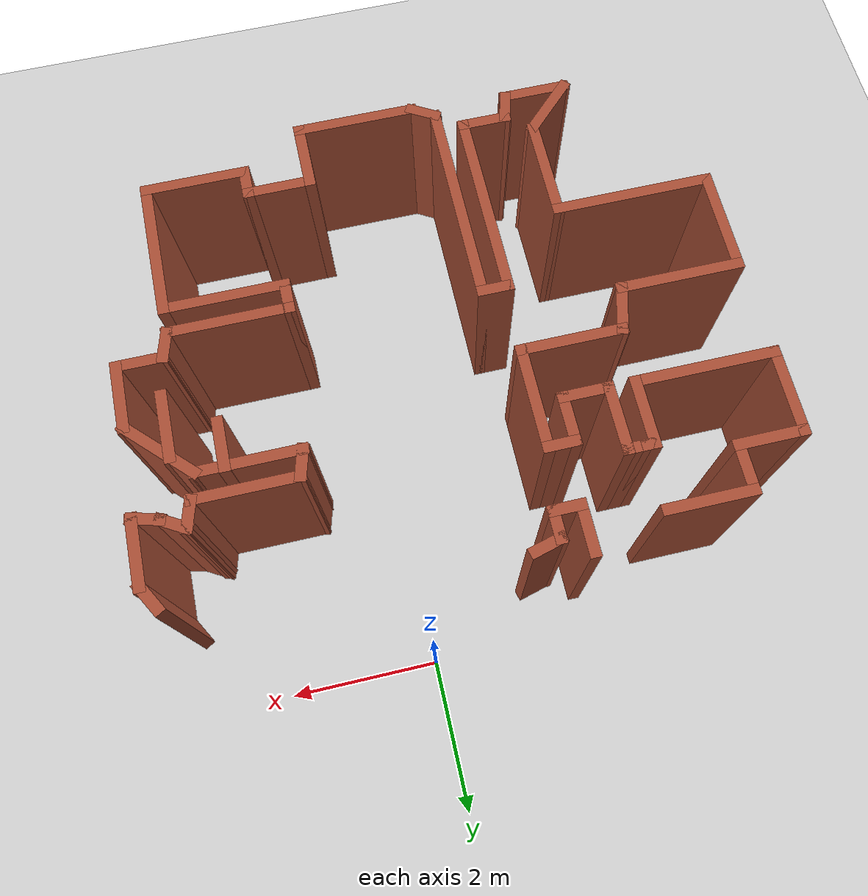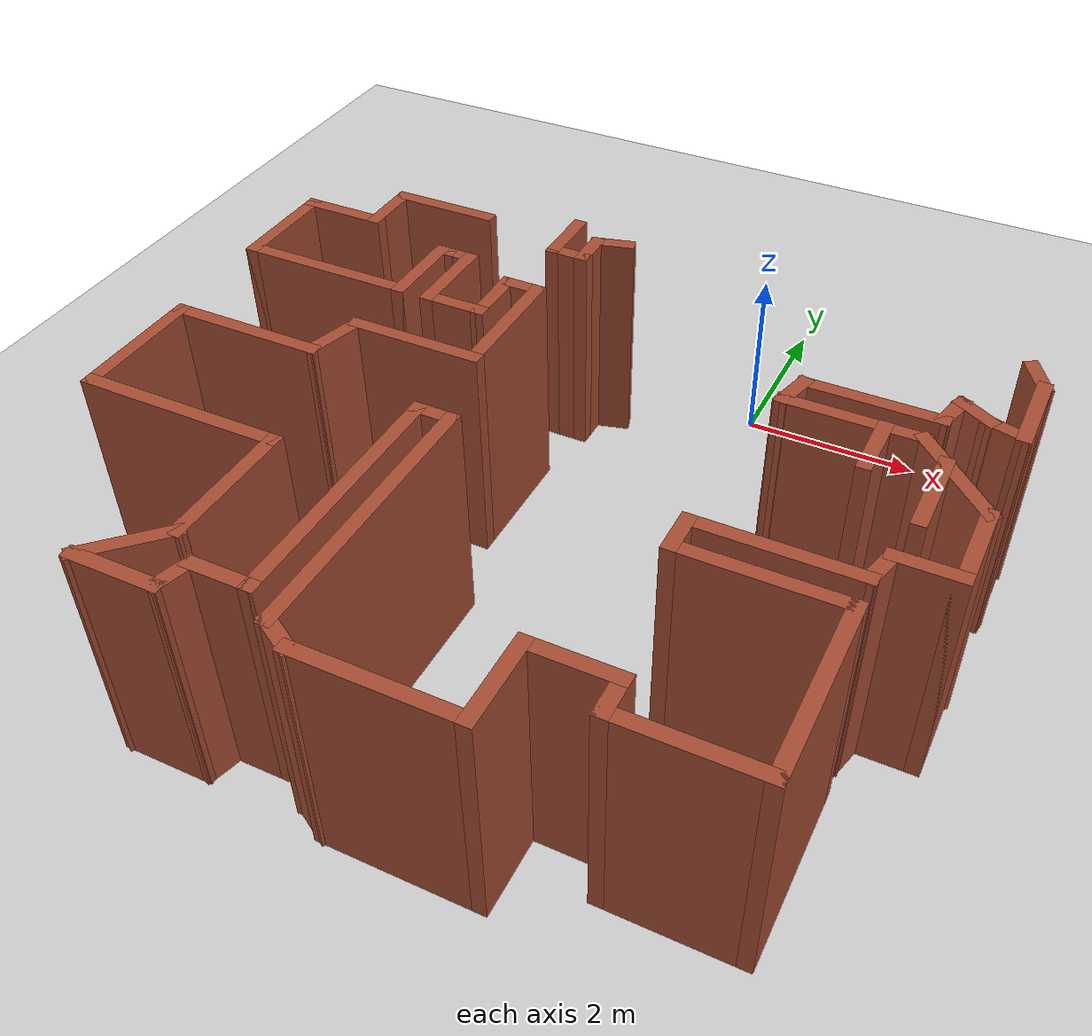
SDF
<sdf version="1.6">
 <world name="default">
  <model name="ground_plane">
   <static>1</static>
   <link name="link">
    <collision name="collision">
     <geometry><plane><normal>0 0 1</normal><size>100 100</size></plane></geometry>
     <surface>
      <contact><collide_bitmask>65535</collide_bitmask></contact>
      <friction><ode><mu>100</mu><mu2>50</mu2></ode></friction>
     </surface>
    </collision>
    <visual name="visual">
     <cast_shadows>0</cast_shadows>
     <geometry><plane><normal>0 0 1</normal><size>100 100</size></plane></geometry>
     <material>
      <script><uri>file://media/materials/scripts/gazebo.material</uri><name>Gazebo/Grey</name></script>
     </material>
    </visual>
   </link>
  </model>
  <model name="map_17">
   <pose>0.240525 -0.952018 0 0 -0 0</pose>
   <link name="Wall_122">
    <collision name="Wall_122_Collision">
     <geometry><box><size>0.75 0.15 2.5</size></box></geometry>
     <pose>0 0 1.25 0 -0 0</pose>
    </collision>
    <visual name="Wall_122_Visual">
     <pose>0 0 1.25 0 -0 0</pose>
     <geometry><box><size>0.75 0.15 2.5</size></box></geometry>
     <material>
      <script><uri>file://media/materials/scripts/gazebo.material</uri><name>Gazebo/Bricks</name></script>
      <ambient>1 1 1 1</ambient>
     </material>
     <meta><layer>0</layer></meta>
    </visual>
    <pose>1.79557 -1.91505 0 0 -0 -1.5708</pose>
   </link>
   <link name="Wall_124">
    <collision name="Wall_124_Collision">
     <geometry><box><size>1 0.15 2.5</size></box></geometry>
     <pose>0 0 1.25 0 -0 0</pose>
    </collision>
    <visual name="Wall_124_Visual">
     <pose>0 0 1.25 0 -0 0</pose>
     <geometry><box><size>1 0.15 2.5</size></box></geometry>
     <material>
      <script><uri>file://media/materials/scripts/gazebo.material</uri><name>Gazebo/Bricks</name></script>
      <ambient>1 1 1 1</ambient>
     </material>
     <meta><layer>0</layer></meta>
    </visual>
    <pose>2.43398 -2.30605 0 0 -0 -1.5708</pose>
   </link>
   <link name="Wall_28">
    <collision name="Wall_28_Collision">
     <geometry><box><size>1.25 0.15 2.5</size></box></geometry>
     <pose>0 0 1.25 0 -0 0</pose>
    </collision>
    <visual name="Wall_28_Visual">
     <pose>0 0 1.25 0 -0 0</pose>
     <geometry><box><size>1.25 0.15 2.5</size></box></geometry>
     <material>
      <script><uri>file://media/materials/scripts/gazebo.material</uri><name>Gazebo/Bricks</name></script>
      <ambient>1 1 1 1</ambient>
     </material>
     <meta><layer>0</layer></meta>
    </visual>
    <pose>-3.88346 0.129907 0 0 -0 3.14159</pose>
   </link>
   <link name="Wall_29">
    <collision name="Wall_29_Collision">
     <geometry><box><size>0.75 0.15 2.5</size></box></geometry>
     <pose>0 0 1.25 0 -0 0</pose>
    </collision>
    <visual name="Wall_29_Visual">
     <pose>0 0 1.25 0 -0 0</pose>
     <geometry><box><size>0.75 0.15 2.5</size></box></geometry>
     <material>
      <script><uri>file://media/materials/scripts/gazebo.material</uri><name>Gazebo/Bricks</name></script>
      <ambient>1 1 1 1</ambient>
     </material>
     <meta><layer>0</layer></meta>
    </visual>
    <pose>-4.43346 -0.170094 0 0 -0 -1.5708</pose>
   </link>
   <link name="Wall_30">
    <collision name="Wall_30_Collision">
     <geometry><box><size>1 0.15 2.5</size></box></geometry>
     <pose>0 0 1.25 0 -0 0</pose>
    </collision>
    <visual name="Wall_30_Visual">
     <pose>0 0 1.25 0 -0 0</pose>
     <geometry><box><size>1 0.15 2.5</size></box></geometry>
     <material>
      <script><uri>file://media/materials/scripts/gazebo.material</uri><name>Gazebo/Bricks</name></script>
      <ambient>1 1 1 1</ambient>
     </material>
     <meta><layer>0</layer></meta>
    </visual>
    <pose>-4.85846 -0.470094 0 0 -0 3.14159</pose>
   </link>
   <link name="Wall_31">
    <collision name="Wall_31_Collision">
     <geometry><box><size>1.25 0.15 2.5</size></box></geometry>
     <pose>0 0 1.25 0 -0 0</pose>
    </collision>
    <visual name="Wall_31_Visual">
     <pose>0 0 1.25 0 -0 0</pose>
     <geometry><box><size>1.25 0.15 2.5</size></box></geometry>
     <material>
      <script><uri>file://media/materials/scripts/gazebo.material</uri><name>Gazebo/Bricks</name></script>
      <ambient>1 1 1 1</ambient>
     </material>
     <meta><layer>0</layer></meta>
    </visual>
    <pose>-5.28346 -1.02009 0 0 -0 -1.5708</pose>
   </link>
   <link name="Wall_32">
    <collision name="Wall_32_Collision">
     <geometry><box><size>2 0.15 2.5</size></box></geometry>
     <pose>0 0 1.25 0 -0 0</pose>
    </collision>
    <visual name="Wall_32_Visual">
     <pose>0 0 1.25 0 -0 0</pose>
     <geometry><box><size>2 0.15 2.5</size></box></geometry>
     <material>
      <script><uri>file://media/materials/scripts/gazebo.material</uri><name>Gazebo/Bricks</name></script>
      <ambient>1 1 1 1</ambient>
     </material>
     <meta><layer>0</layer></meta>
    </visual>
    <pose>-4.35846 -1.57009 0 0 -0 0</pose>
   </link>
   <link name="Wall_33">
    <collision name="Wall_33_Collision">
     <geometry><box><size>1 0.15 2.5</size></box></geometry>
     <pose>0 0 1.25 0 -0 0</pose>
    </collision>
    <visual name="Wall_33_Visual">
     <pose>0 0 1.25 0 -0 0</pose>
     <geometry><box><size>1 0.15 2.5</size></box></geometry>
     <material>
      <script><uri>file://media/materials/scripts/gazebo.material</uri><name>Gazebo/Bricks</name></script>
      <ambient>1 1 1 1</ambient>
     </material>
     <meta><layer>0</layer></meta>
    </visual>
    <pose>-3.43346 -1.14509 0 0 -0 1.5708</pose>
   </link>
   <link name="Wall_34">
    <collision name="Wall_34_Collision">
     <geometry><box><size>0.25 0.15 2.5</size></box></geometry>
     <pose>0 0 1.25 0 -0 0</pose>
    </collision>
    <visual name="Wall_34_Visual">
     <pose>0 0 1.25 0 -0 0</pose>
     <geometry><box><size>0.25 0.15 2.5</size></box></geometry>
     <material>
      <script><uri>file://media/materials/scripts/gazebo.material</uri><name>Gazebo/Bricks</name></script>
      <ambient>1 1 1 1</ambient>
     </material>
     <meta><layer>0</layer></meta>
    </visual>
    <pose>-3.38346 -0.720094 0 0 -0 0</pose>
   </link>
   <link name="Wall_36">
    <collision name="Wall_36_Collision">
     <geometry><box><size>0.5 0.15 2.5</size></box></geometry>
     <pose>0 0 1.25 0 -0 0</pose>
    </collision>
    <visual name="Wall_36_Visual">
     <pose>0 0 1.25 0 -0 0</pose>
     <geometry><box><size>0.5 0.15 2.5</size></box></geometry>
     <material>
      <script><uri>file://media/materials/scripts/gazebo.material</uri><name>Gazebo/Bricks</name></script>
      <ambient>1 1 1 1</ambient>
     </material>
     <meta><layer>0</layer></meta>
    </visual>
    <pose>-3.25846 -0.720094 0 0 -0 0</pose>
   </link>
   <link name="Wall_37">
    <collision name="Wall_37_Collision">
     <geometry><box><size>1 0.15 2.5</size></box></geometry>
     <pose>0 0 1.25 0 -0 0</pose>
    </collision>
    <visual name="Wall_37_Visual">
     <pose>0 0 1.25 0 -0 0</pose>
     <geometry><box><size>1 0.15 2.5</size></box></geometry>
     <material>
      <script><uri>file://media/materials/scripts/gazebo.material</uri><name>Gazebo/Bricks</name></script>
      <ambient>1 1 1 1</ambient>
     </material>
     <meta><layer>0</layer></meta>
    </visual>
    <pose>-3.08346 -1.14509 0 0 -0 -1.5708</pose>
   </link>
   <link name="Wall_38">
    <collision name="Wall_38_Collision">
     <geometry><box><size>0.75 0.15 2.5</size></box></geometry>
     <pose>0 0 1.25 0 -0 0</pose>
    </collision>
    <visual name="Wall_38_Visual">
     <pose>0 0 1.25 0 -0 0</pose>
     <geometry><box><size>0.75 0.15 2.5</size></box></geometry>
     <material>
      <script><uri>file://media/materials/scripts/gazebo.material</uri><name>Gazebo/Bricks</name></script>
      <ambient>1 1 1 1</ambient>
     </material>
     <meta><layer>0</layer></meta>
    </visual>
    <pose>-2.78346 -1.57009 0 0 -0 0</pose>
   </link>
   <link name="Wall_39">
    <collision name="Wall_39_Collision">
     <geometry><box><size>0.75 0.15 2.5</size></box></geometry>
     <pose>0 0 1.25 0 -0 0</pose>
    </collision>
    <visual name="Wall_39_Visual">
     <pose>0 0 1.25 0 -0 0</pose>
     <geometry><box><size>0.75 0.15 2.5</size></box></geometry>
     <material>
      <script><uri>file://media/materials/scripts/gazebo.material</uri><name>Gazebo/Bricks</name></script>
      <ambient>1 1 1 1</ambient>
     </material>
     <meta><layer>0</layer></meta>
    </visual>
    <pose>-2.48346 -1.27009 0 0 -0 1.5708</pose>
   </link>
   <link name="Wall_40">
    <collision name="Wall_40_Collision">
     <geometry><box><size>0.5 0.15 2.5</size></box></geometry>
     <pose>0 0 1.25 0 -0 0</pose>
    </collision>
    <visual name="Wall_40_Visual">
     <pose>0 0 1.25 0 -0 0</pose>
     <geometry><box><size>0.5 0.15 2.5</size></box></geometry>
     <material>
      <script><uri>file://media/materials/scripts/gazebo.material</uri><name>Gazebo/Bricks</name></script>
      <ambient>1 1 1 1</ambient>
     </material>
     <meta><layer>0</layer></meta>
    </visual>
    <pose>-2.30846 -0.970094 0 0 -0 0</pose>
   </link>
   <link name="Wall_41">
    <collision name="Wall_41_Collision">
     <geometry><box><size>1.5 0.15 2.5</size></box></geometry>
     <pose>0 0 1.25 0 -0 0</pose>
    </collision>
    <visual name="Wall_41_Visual">
     <pose>0 0 1.25 0 -0 0</pose>
     <geometry><box><size>1.5 0.15 2.5</size></box></geometry>
     <material>
      <script><uri>file://media/materials/scripts/gazebo.material</uri><name>Gazebo/Bricks</name></script>
      <ambient>1 1 1 1</ambient>
     </material>
     <meta><layer>0</layer></meta>
    </visual>
    <pose>-2.13346 -1.64509 0 0 -0 -1.5708</pose>
   </link>
   <link name="Wall_42">
    <collision name="Wall_42_Collision">
     <geometry><box><size>1.5 0.15 2.5</size></box></geometry>
     <pose>0 0 1.25 0 -0 0</pose>
    </collision>
    <visual name="Wall_42_Visual">
     <pose>0 0 1.25 0 -0 0</pose>
     <geometry><box><size>1.5 0.15 2.5</size></box></geometry>
     <material>
      <script><uri>file://media/materials/scripts/gazebo.material</uri><name>Gazebo/Bricks</name></script>
      <ambient>1 1 1 1</ambient>
     </material>
     <meta><layer>0</layer></meta>
    </visual>
    <pose>-2.80846 -2.32009 0 0 -0 3.14159</pose>
   </link>
   <link name="Wall_43">
    <collision name="Wall_43_Collision">
     <geometry><box><size>0.75 0.15 2.5</size></box></geometry>
     <pose>0 0 1.25 0 -0 0</pose>
    </collision>
    <visual name="Wall_43_Visual">
     <pose>0 0 1.25 0 -0 0</pose>
     <geometry><box><size>0.75 0.15 2.5</size></box></geometry>
     <material>
      <script><uri>file://media/materials/scripts/gazebo.material</uri><name>Gazebo/Bricks</name></script>
      <ambient>1 1 1 1</ambient>
     </material>
     <meta><layer>0</layer></meta>
    </visual>
    <pose>-3.56111 -2.60987 0 0 -0 -1.8326</pose>
   </link>
   <link name="Wall_44">
    <collision name="Wall_44_Collision">
     <geometry><box><size>1.75 0.15 2.5</size></box></geometry>
     <pose>0 0 1.25 0 -0 0</pose>
    </collision>
    <visual name="Wall_44_Visual">
     <pose>0 0 1.25 0 -0 0</pose>
     <geometry><box><size>1.75 0.15 2.5</size></box></geometry>
     <material>
      <script><uri>file://media/materials/scripts/gazebo.material</uri><name>Gazebo/Bricks</name></script>
      <ambient>1 1 1 1</ambient>
     </material>
     <meta><layer>0</layer></meta>
    </visual>
    <pose>-4.43876 -2.89965 0 0 -0 3.14159</pose>
   </link>
   <link name="Wall_45">
    <collision name="Wall_45_Collision">
     <geometry><box><size>1.5 0.15 2.5</size></box></geometry>
     <pose>0 0 1.25 0 -0 0</pose>
    </collision>
    <visual name="Wall_45_Visual">
     <pose>0 0 1.25 0 -0 0</pose>
     <geometry><box><size>1.5 0.15 2.5</size></box></geometry>
     <material>
      <script><uri>file://media/materials/scripts/gazebo.material</uri><name>Gazebo/Bricks</name></script>
      <ambient>1 1 1 1</ambient>
     </material>
     <meta><layer>0</layer></meta>
    </visual>
    <pose>-5.23876 -3.57465 0 0 -0 -1.5708</pose>
   </link>
   <link name="Wall_46">
    <collision name="Wall_46_Collision">
     <geometry><box><size>2.25 0.15 2.5</size></box></geometry>
     <pose>0 0 1.25 0 -0 0</pose>
    </collision>
    <visual name="Wall_46_Visual">
     <pose>0 0 1.25 0 -0 0</pose>
     <geometry><box><size>2.25 0.15 2.5</size></box></geometry>
     <material>
      <script><uri>file://media/materials/scripts/gazebo.material</uri><name>Gazebo/Bricks</name></script>
      <ambient>1 1 1 1</ambient>
     </material>
     <meta><layer>0</layer></meta>
    </visual>
    <pose>-4.18876 -4.24965 0 0 -0 0</pose>
   </link>
   <link name="Wall_47">
    <collision name="Wall_47_Collision">
     <geometry><box><size>1.5 0.15 2.5</size></box></geometry>
     <pose>0 0 1.25 0 -0 0</pose>
    </collision>
    <visual name="Wall_47_Visual">
     <pose>0 0 1.25 0 -0 0</pose>
     <geometry><box><size>1.5 0.15 2.5</size></box></geometry>
     <material>
      <script><uri>file://media/materials/scripts/gazebo.material</uri><name>Gazebo/Bricks</name></script>
      <ambient>1 1 1 1</ambient>
     </material>
     <meta><layer>0</layer></meta>
    </visual>
    <pose>-3.13876 -4.92465 0 0 -0 -1.5708</pose>
   </link>
   <link name="Wall_50">
    <collision name="Wall_50_Collision">
     <geometry><box><size>1 0.15 2.5</size></box></geometry>
     <pose>0 0 1.25 0 -0 0</pose>
    </collision>
    <visual name="Wall_50_Visual">
     <pose>0 0 1.25 0 -0 0</pose>
     <geometry><box><size>1 0.15 2.5</size></box></geometry>
     <material>
      <script><uri>file://media/materials/scripts/gazebo.material</uri><name>Gazebo/Bricks</name></script>
      <ambient>1 1 1 1</ambient>
     </material>
     <meta><layer>0</layer></meta>
    </visual>
    <pose>-3.43928 -5.90017 0 0 -0 -2.35619</pose>
   </link>
   <link name="Wall_51">
    <collision name="Wall_51_Collision">
     <geometry><box><size>1 0.15 2.5</size></box></geometry>
     <pose>0 0 1.25 0 -0 0</pose>
    </collision>
    <visual name="Wall_51_Visual">
     <pose>0 0 1.25 0 -0 0</pose>
     <geometry><box><size>1 0.15 2.5</size></box></geometry>
     <material>
      <script><uri>file://media/materials/scripts/gazebo.material</uri><name>Gazebo/Bricks</name></script>
      <ambient>1 1 1 1</ambient>
     </material>
     <meta><layer>0</layer></meta>
    </visual>
    <pose>-3.3148 -6.20069 0 0 -0 0</pose>
   </link>
   <link name="Wall_52">
    <collision name="Wall_52_Collision">
     <geometry><box><size>0.5 0.15 2.5</size></box></geometry>
     <pose>0 0 1.25 0 -0 0</pose>
    </collision>
    <visual name="Wall_52_Visual">
     <pose>0 0 1.25 0 -0 0</pose>
     <geometry><box><size>0.5 0.15 2.5</size></box></geometry>
     <material>
      <script><uri>file://media/materials/scripts/gazebo.material</uri><name>Gazebo/Bricks</name></script>
      <ambient>1 1 1 1</ambient>
     </material>
     <meta><layer>0</layer></meta>
    </visual>
    <pose>-2.8445 -6.03165 0 0 -0 1.309</pose>
   </link>
   <link name="Wall_53">
    <collision name="Wall_53_Collision">
     <geometry><box><size>0.75 0.15 2.5</size></box></geometry>
     <pose>0 0 1.25 0 -0 0</pose>
    </collision>
    <visual name="Wall_53_Visual">
     <pose>0 0 1.25 0 -0 0</pose>
     <geometry><box><size>0.75 0.15 2.5</size></box></geometry>
     <material>
      <script><uri>file://media/materials/scripts/gazebo.material</uri><name>Gazebo/Bricks</name></script>
      <ambient>1 1 1 1</ambient>
     </material>
     <meta><layer>0</layer></meta>
    </visual>
    <pose>-2.49921 -5.86262 0 0 -0 0</pose>
   </link>
   <link name="Wall_54">
    <collision name="Wall_54_Collision">
     <geometry><box><size>2.75 0.15 2.5</size></box></geometry>
     <pose>0 0 1.25 0 -0 0</pose>
    </collision>
    <visual name="Wall_54_Visual">
     <pose>0 0 1.25 0 -0 0</pose>
     <geometry><box><size>2.75 0.15 2.5</size></box></geometry>
     <material>
      <script><uri>file://media/materials/scripts/gazebo.material</uri><name>Gazebo/Bricks</name></script>
      <ambient>1 1 1 1</ambient>
     </material>
     <meta><layer>0</layer></meta>
    </visual>
    <pose>-2.19921 -4.56262 0 0 -0 1.5708</pose>
   </link>
   <link name="Wall_55">
    <collision name="Wall_55_Collision">
     <geometry><box><size>0.5 0.15 2.5</size></box></geometry>
     <pose>0 0 1.25 0 -0 0</pose>
    </collision>
    <visual name="Wall_55_Visual">
     <pose>0 0 1.25 0 -0 0</pose>
     <geometry><box><size>0.5 0.15 2.5</size></box></geometry>
     <material>
      <script><uri>file://media/materials/scripts/gazebo.material</uri><name>Gazebo/Bricks</name></script>
      <ambient>1 1 1 1</ambient>
     </material>
     <meta><layer>0</layer></meta>
    </visual>
    <pose>-2.02421 -3.26262 0 0 -0 0</pose>
   </link>
   <link name="Wall_56">
    <collision name="Wall_56_Collision">
     <geometry><box><size>3 0.15 2.5</size></box></geometry>
     <pose>0 0 1.25 0 -0 0</pose>
    </collision>
    <visual name="Wall_56_Visual">
     <pose>0 0 1.25 0 -0 0</pose>
     <geometry><box><size>3 0.15 2.5</size></box></geometry>
     <material>
      <script><uri>file://media/materials/scripts/gazebo.material</uri><name>Gazebo/Bricks</name></script>
      <ambient>1 1 1 1</ambient>
     </material>
     <meta><layer>0</layer></meta>
    </visual>
    <pose>-1.84921 -4.68762 0 0 -0 -1.5708</pose>
   </link>
   <link name="Wall_57">
    <collision name="Wall_57_Collision">
     <geometry><box><size>0.5 0.15 2.5</size></box></geometry>
     <pose>0 0 1.25 0 -0 0</pose>
    </collision>
    <visual name="Wall_57_Visual">
     <pose>0 0 1.25 0 -0 0</pose>
     <geometry><box><size>0.5 0.15 2.5</size></box></geometry>
     <material>
      <script><uri>file://media/materials/scripts/gazebo.material</uri><name>Gazebo/Bricks</name></script>
      <ambient>1 1 1 1</ambient>
     </material>
     <meta><layer>0</layer></meta>
    </visual>
    <pose>-1.69765 -6.20012 0 0 -0 -0.523599</pose>
   </link>
   <link name="Wall_58">
    <collision name="Wall_58_Collision">
     <geometry><box><size>1.75 0.15 2.5</size></box></geometry>
     <pose>0 0 1.25 0 -0 0</pose>
    </collision>
    <visual name="Wall_58_Visual">
     <pose>0 0 1.25 0 -0 0</pose>
     <geometry><box><size>1.75 0.15 2.5</size></box></geometry>
     <material>
      <script><uri>file://media/materials/scripts/gazebo.material</uri><name>Gazebo/Bricks</name></script>
      <ambient>1 1 1 1</ambient>
     </material>
     <meta><layer>0</layer></meta>
    </visual>
    <pose>-0.746101 -6.28761 0 0 -0 0</pose>
   </link>
   <link name="Wall_6">
    <collision name="Wall_6_Collision">
     <geometry><box><size>0.5 0.15 2.5</size></box></geometry>
     <pose>0 0 1.25 0 -0 0</pose>
    </collision>
    <visual name="Wall_6_Visual">
     <pose>0 0 1.25 0 -0 0</pose>
     <geometry><box><size>0.5 0.15 2.5</size></box></geometry>
     <material>
      <script><uri>file://media/materials/scripts/gazebo.material</uri><name>Gazebo/Bricks</name></script>
      <ambient>1 1 1 1</ambient>
     </material>
     <meta><layer>0</layer></meta>
    </visual>
    <pose>-1.81535 0.230958 0 0 -0 -2.87979</pose>
   </link>
   <link name="Wall_62">
    <collision name="Wall_62_Collision">
     <geometry><box><size>1 0.15 2.5</size></box></geometry>
     <pose>0 0 1.25 0 -0 0</pose>
    </collision>
    <visual name="Wall_62_Visual">
     <pose>0 0 1.25 0 -0 0</pose>
     <geometry><box><size>1 0.15 2.5</size></box></geometry>
     <material>
      <script><uri>file://media/materials/scripts/gazebo.material</uri><name>Gazebo/Bricks</name></script>
      <ambient>1 1 1 1</ambient>
     </material>
     <meta><layer>0</layer></meta>
    </visual>
    <pose>0.053899 -5.86262 0 0 -0 1.5708</pose>
   </link>
   <link name="Wall_63">
    <collision name="Wall_63_Collision">
     <geometry><box><size>1 0.15 2.5</size></box></geometry>
     <pose>0 0 1.25 0 -0 0</pose>
    </collision>
    <visual name="Wall_63_Visual">
     <pose>0 0 1.25 0 -0 0</pose>
     <geometry><box><size>1 0.15 2.5</size></box></geometry>
     <material>
      <script><uri>file://media/materials/scripts/gazebo.material</uri><name>Gazebo/Bricks</name></script>
      <ambient>1 1 1 1</ambient>
     </material>
     <meta><layer>0</layer></meta>
    </visual>
    <pose>0.478899 -5.43762 0 0 -0 0</pose>
   </link>
   <link name="Wall_64">
    <collision name="Wall_64_Collision">
     <geometry><box><size>0.5 0.15 2.5</size></box></geometry>
     <pose>0 0 1.25 0 -0 0</pose>
    </collision>
    <visual name="Wall_64_Visual">
     <pose>0 0 1.25 0 -0 0</pose>
     <geometry><box><size>0.5 0.15 2.5</size></box></geometry>
     <material>
      <script><uri>file://media/materials/scripts/gazebo.material</uri><name>Gazebo/Bricks</name></script>
      <ambient>1 1 1 1</ambient>
     </material>
     <meta><layer>0</layer></meta>
    </visual>
    <pose>0.903899 -5.61262 0 0 -0 -1.5708</pose>
   </link>
   <link name="Wall_65">
    <collision name="Wall_65_Collision">
     <geometry><box><size>1.5 0.15 2.5</size></box></geometry>
     <pose>0 0 1.25 0 -0 0</pose>
    </collision>
    <visual name="Wall_65_Visual">
     <pose>0 0 1.25 0 -0 0</pose>
     <geometry><box><size>1.5 0.15 2.5</size></box></geometry>
     <material>
      <script><uri>file://media/materials/scripts/gazebo.material</uri><name>Gazebo/Bricks</name></script>
      <ambient>1 1 1 1</ambient>
     </material>
     <meta><layer>0</layer></meta>
    </visual>
    <pose>1.5789 -5.78761 0 0 -0 0</pose>
   </link>
   <link name="Wall_66">
    <collision name="Wall_66_Collision">
     <geometry><box><size>2 0.15 2.5</size></box></geometry>
     <pose>0 0 1.25 0 -0 0</pose>
    </collision>
    <visual name="Wall_66_Visual">
     <pose>0 0 1.25 0 -0 0</pose>
     <geometry><box><size>2 0.15 2.5</size></box></geometry>
     <material>
      <script><uri>file://media/materials/scripts/gazebo.material</uri><name>Gazebo/Bricks</name></script>
      <ambient>1 1 1 1</ambient>
     </material>
     <meta><layer>0</layer></meta>
    </visual>
    <pose>2.2539 -4.86262 0 0 -0 1.5708</pose>
   </link>
   <link name="Wall_67">
    <collision name="Wall_67_Collision">
     <geometry><box><size>1.75 0.15 2.5</size></box></geometry>
     <pose>0 0 1.25 0 -0 0</pose>
    </collision>
    <visual name="Wall_67_Visual">
     <pose>0 0 1.25 0 -0 0</pose>
     <geometry><box><size>1.75 0.15 2.5</size></box></geometry>
     <material>
      <script><uri>file://media/materials/scripts/gazebo.material</uri><name>Gazebo/Bricks</name></script>
      <ambient>1 1 1 1</ambient>
     </material>
     <meta><layer>0</layer></meta>
    </visual>
    <pose>1.4539 -3.93762 0 0 -0 3.14159</pose>
   </link>
   <link name="Wall_68">
    <collision name="Wall_68_Collision">
     <geometry><box><size>0.5 0.15 2.5</size></box></geometry>
     <pose>0 0 1.25 0 -0 0</pose>
    </collision>
    <visual name="Wall_68_Visual">
     <pose>0 0 1.25 0 -0 0</pose>
     <geometry><box><size>0.5 0.15 2.5</size></box></geometry>
     <material>
      <script><uri>file://media/materials/scripts/gazebo.material</uri><name>Gazebo/Bricks</name></script>
      <ambient>1 1 1 1</ambient>
     </material>
     <meta><layer>0</layer></meta>
    </visual>
    <pose>0.653899 -3.76262 0 0 -0 1.5708</pose>
   </link>
   <link name="Wall_69">
    <collision name="Wall_69_Collision">
     <geometry><box><size>1.75 0.15 2.5</size></box></geometry>
     <pose>0 0 1.25 0 -0 0</pose>
    </collision>
    <visual name="Wall_69_Visual">
     <pose>0 0 1.25 0 -0 0</pose>
     <geometry><box><size>1.75 0.15 2.5</size></box></geometry>
     <material>
      <script><uri>file://media/materials/scripts/gazebo.material</uri><name>Gazebo/Bricks</name></script>
      <ambient>1 1 1 1</ambient>
     </material>
     <meta><layer>0</layer></meta>
    </visual>
    <pose>1.4539 -3.58762 0 0 -0 0</pose>
   </link>
   <link name="Wall_7">
    <collision name="Wall_7_Collision">
     <geometry><box><size>0.5 0.15 2.5</size></box></geometry>
     <pose>0 0 1.25 0 -0 0</pose>
    </collision>
    <visual name="Wall_7_Visual">
     <pose>0 0 1.25 0 -0 0</pose>
     <geometry><box><size>0.5 0.15 2.5</size></box></geometry>
     <material>
      <script><uri>file://media/materials/scripts/gazebo.material</uri><name>Gazebo/Bricks</name></script>
      <ambient>1 1 1 1</ambient>
     </material>
     <meta><layer>0</layer></meta>
    </visual>
    <pose>-1.98439 0.010664 0 0 -0 -1.5708</pose>
   </link>
   <link name="Wall_70">
    <collision name="Wall_70_Collision">
     <geometry><box><size>0.5 0.15 2.5</size></box></geometry>
     <pose>0 0 1.25 0 -0 0</pose>
    </collision>
    <visual name="Wall_70_Visual">
     <pose>0 0 1.25 0 -0 0</pose>
     <geometry><box><size>0.5 0.15 2.5</size></box></geometry>
     <material>
      <script><uri>file://media/materials/scripts/gazebo.material</uri><name>Gazebo/Bricks</name></script>
      <ambient>1 1 1 1</ambient>
     </material>
     <meta><layer>0</layer></meta>
    </visual>
    <pose>2.29919 -3.41858 0 0 -0 1.309</pose>
   </link>
   <link name="Wall_71">
    <collision name="Wall_71_Collision">
     <geometry><box><size>0.75 0.15 2.5</size></box></geometry>
     <pose>0 0 1.25 0 -0 0</pose>
    </collision>
    <visual name="Wall_71_Visual">
     <pose>0 0 1.25 0 -0 0</pose>
     <geometry><box><size>0.75 0.15 2.5</size></box></geometry>
     <material>
      <script><uri>file://media/materials/scripts/gazebo.material</uri><name>Gazebo/Bricks</name></script>
      <ambient>1 1 1 1</ambient>
     </material>
     <meta><layer>0</layer></meta>
    </visual>
    <pose>2.64449 -3.24954 0 0 -0 0</pose>
   </link>
   <link name="Wall_72">
    <collision name="Wall_72_Collision">
     <geometry><box><size>1 0.15 2.5</size></box></geometry>
     <pose>0 0 1.25 0 -0 0</pose>
    </collision>
    <visual name="Wall_72_Visual">
     <pose>0 0 1.25 0 -0 0</pose>
     <geometry><box><size>1 0.15 2.5</size></box></geometry>
     <material>
      <script><uri>file://media/materials/scripts/gazebo.material</uri><name>Gazebo/Bricks</name></script>
      <ambient>1 1 1 1</ambient>
     </material>
     <meta><layer>0</layer></meta>
    </visual>
    <pose>2.94449 -2.82454 0 0 -0 1.5708</pose>
   </link>
   <link name="Wall_73">
    <collision name="Wall_73_Collision">
     <geometry><box><size>1.25 0.15 2.5</size></box></geometry>
     <pose>0 0 1.25 0 -0 0</pose>
    </collision>
    <visual name="Wall_73_Visual">
     <pose>0 0 1.25 0 -0 0</pose>
     <geometry><box><size>1.25 0.15 2.5</size></box></geometry>
     <material>
      <script><uri>file://media/materials/scripts/gazebo.material</uri><name>Gazebo/Bricks</name></script>
      <ambient>1 1 1 1</ambient>
     </material>
     <meta><layer>0</layer></meta>
    </visual>
    <pose>2.55558 -2.01063 0 0 -0 2.35619</pose>
   </link>
   <link name="Wall_74">
    <collision name="Wall_74_Collision">
     <geometry><box><size>1.5 0.15 2.5</size></box></geometry>
     <pose>0 0 1.25 0 -0 0</pose>
    </collision>
    <visual name="Wall_74_Visual">
     <pose>0 0 1.25 0 -0 0</pose>
     <geometry><box><size>1.5 0.15 2.5</size></box></geometry>
     <material>
      <script><uri>file://media/materials/scripts/gazebo.material</uri><name>Gazebo/Bricks</name></script>
      <ambient>1 1 1 1</ambient>
     </material>
     <meta><layer>0</layer></meta>
    </visual>
    <pose>1.49167 -1.62172 0 0 -0 3.14159</pose>
   </link>
   <link name="Wall_75">
    <collision name="Wall_75_Collision">
     <geometry><box><size>0.5 0.15 2.5</size></box></geometry>
     <pose>0 0 1.25 0 -0 0</pose>
    </collision>
    <visual name="Wall_75_Visual">
     <pose>0 0 1.25 0 -0 0</pose>
     <geometry><box><size>0.5 0.15 2.5</size></box></geometry>
     <material>
      <script><uri>file://media/materials/scripts/gazebo.material</uri><name>Gazebo/Bricks</name></script>
      <ambient>1 1 1 1</ambient>
     </material>
     <meta><layer>0</layer></meta>
    </visual>
    <pose>0.861962 -1.45269 0 0 -0 1.309</pose>
   </link>
   <link name="Wall_76">
    <collision name="Wall_76_Collision">
     <geometry><box><size>1.5 0.15 2.5</size></box></geometry>
     <pose>0 0 1.25 0 -0 0</pose>
    </collision>
    <visual name="Wall_76_Visual">
     <pose>0 0 1.25 0 -0 0</pose>
     <geometry><box><size>1.5 0.15 2.5</size></box></geometry>
     <material>
      <script><uri>file://media/materials/scripts/gazebo.material</uri><name>Gazebo/Bricks</name></script>
      <ambient>1 1 1 1</ambient>
     </material>
     <meta><layer>0</layer></meta>
    </visual>
    <pose>1.58225 -1.28365 0 0 -0 0</pose>
   </link>
   <link name="Wall_77">
    <collision name="Wall_77_Collision">
     <geometry><box><size>0.5 0.15 2.5</size></box></geometry>
     <pose>0 0 1.25 0 -0 0</pose>
    </collision>
    <visual name="Wall_77_Visual">
     <pose>0 0 1.25 0 -0 0</pose>
     <geometry><box><size>0.5 0.15 2.5</size></box></geometry>
     <material>
      <script><uri>file://media/materials/scripts/gazebo.material</uri><name>Gazebo/Bricks</name></script>
      <ambient>1 1 1 1</ambient>
     </material>
     <meta><layer>0</layer></meta>
    </visual>
    <pose>2.30255 -1.11461 0 0 -0 1.309</pose>
   </link>
   <link name="Wall_78">
    <collision name="Wall_78_Collision">
     <geometry><box><size>0.5 0.15 2.5</size></box></geometry>
     <pose>0 0 1.25 0 -0 0</pose>
    </collision>
    <visual name="Wall_78_Visual">
     <pose>0 0 1.25 0 -0 0</pose>
     <geometry><box><size>0.5 0.15 2.5</size></box></geometry>
     <material>
      <script><uri>file://media/materials/scripts/gazebo.material</uri><name>Gazebo/Bricks</name></script>
      <ambient>1 1 1 1</ambient>
     </material>
     <meta><layer>0</layer></meta>
    </visual>
    <pose>2.4994 -1.03308 0 0 -0 -0.523599</pose>
   </link>
   <link name="Wall_79">
    <collision name="Wall_79_Collision">
     <geometry><box><size>0.5 0.15 2.5</size></box></geometry>
     <pose>0 0 1.25 0 -0 0</pose>
    </collision>
    <visual name="Wall_79_Visual">
     <pose>0 0 1.25 0 -0 0</pose>
     <geometry><box><size>0.5 0.15 2.5</size></box></geometry>
     <material>
      <script><uri>file://media/materials/scripts/gazebo.material</uri><name>Gazebo/Bricks</name></script>
      <ambient>1 1 1 1</ambient>
     </material>
     <meta><layer>0</layer></meta>
    </visual>
    <pose>2.81999 -1.16587 0 0 -0 -0.261799</pose>
   </link>
   <link name="Wall_8">
    <collision name="Wall_8_Collision">
     <geometry><box><size>0.5 0.15 2.5</size></box></geometry>
     <pose>0 0 1.25 0 -0 0</pose>
    </collision>
    <visual name="Wall_8_Visual">
     <pose>0 0 1.25 0 -0 0</pose>
     <geometry><box><size>0.5 0.15 2.5</size></box></geometry>
     <material>
      <script><uri>file://media/materials/scripts/gazebo.material</uri><name>Gazebo/Bricks</name></script>
      <ambient>1 1 1 1</ambient>
     </material>
     <meta><layer>0</layer></meta>
    </visual>
    <pose>-2.15939 -0.164335 0 0 -0 3.14159</pose>
   </link>
   <link name="Wall_80">
    <collision name="Wall_80_Collision">
     <geometry><box><size>1 0.15 2.5</size></box></geometry>
     <pose>0 0 1.25 0 -0 0</pose>
    </collision>
    <visual name="Wall_80_Visual">
     <pose>0 0 1.25 0 -0 0</pose>
     <geometry><box><size>1 0.15 2.5</size></box></geometry>
     <material>
      <script><uri>file://media/materials/scripts/gazebo.material</uri><name>Gazebo/Bricks</name></script>
      <ambient>1 1 1 1</ambient>
     </material>
     <meta><layer>0</layer></meta>
    </visual>
    <pose>2.98902 -0.786163 0 0 -0 1.5708</pose>
   </link>
   <link name="Wall_81">
    <collision name="Wall_81_Collision">
     <geometry><box><size>0.5 0.15 2.5</size></box></geometry>
     <pose>0 0 1.25 0 -0 0</pose>
    </collision>
    <visual name="Wall_81_Visual">
     <pose>0 0 1.25 0 -0 0</pose>
     <geometry><box><size>0.5 0.15 2.5</size></box></geometry>
     <material>
      <script><uri>file://media/materials/scripts/gazebo.material</uri><name>Gazebo/Bricks</name></script>
      <ambient>1 1 1 1</ambient>
     </material>
     <meta><layer>0</layer></meta>
    </visual>
    <pose>2.90152 -0.209609 0 0 -0 2.0944</pose>
   </link>
   <link name="Wall_9">
    <collision name="Wall_9_Collision">
     <geometry><box><size>0.75 0.15 2.5</size></box></geometry>
     <pose>0 0 1.25 0 -0 0</pose>
    </collision>
    <visual name="Wall_9_Visual">
     <pose>0 0 1.25 0 -0 0</pose>
     <geometry><box><size>0.75 0.15 2.5</size></box></geometry>
     <material>
      <script><uri>file://media/materials/scripts/gazebo.material</uri><name>Gazebo/Bricks</name></script>
      <ambient>1 1 1 1</ambient>
     </material>
     <meta><layer>0</layer></meta>
    </visual>
    <pose>-2.33439 0.135664 0 0 -0 1.5708</pose>
   </link>
   <static>1</static>
  </model>
 </world>
</sdf>
